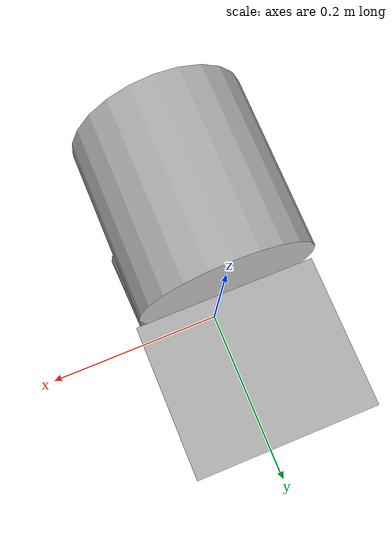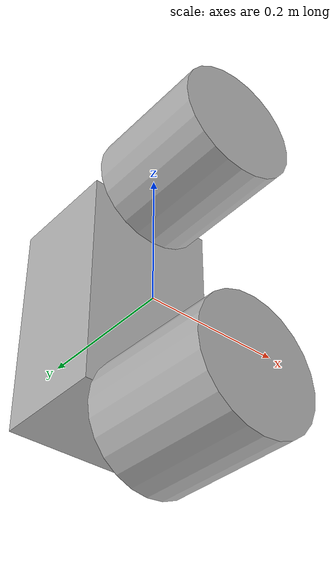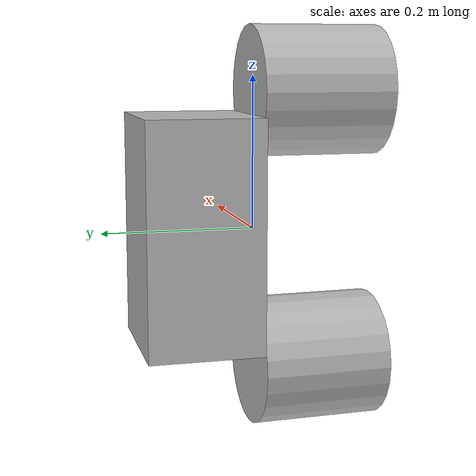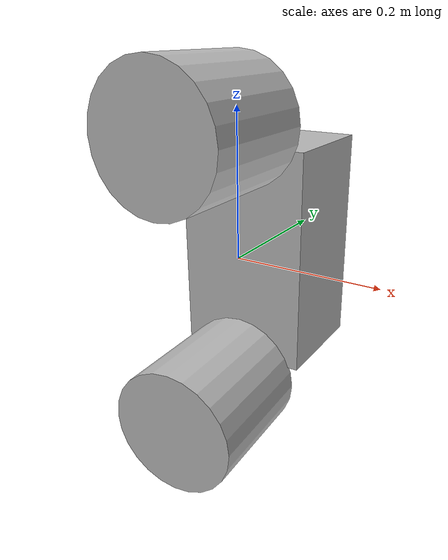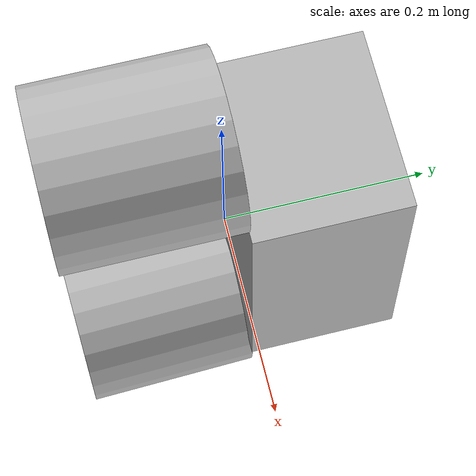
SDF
<sdf version="1.6">
<model name="GeneratedModel" canonical_link='base_link'>
  <link name="base_link">
    <pose>0 0.08 0 0 0 0</pose>
    <collision name='base_link collision'>
      <geometry>
        <box>
          <size>0.18 0.15 0.3</size>
        </box>
      </geometry>
    </collision>
    <visual name='base_link visual'>
      <geometry>
        <box>
          <size>0.18 0.15 0.3</size>
        </box>
      </geometry>
    </visual>
    <material>
      <script>
        <uri>file://media/materials/scripts/gazebo.material</uri>
        <name>Gazebo/Red</name>
      </script>
      <ambient>0 0.08437621153575764 0.913098651791473 1</ambient>
      <diffuse>0 0.08437621153575764 0.913098651791473 1</diffuse>
      <specular>0.1 0.1 0.1 1</specular>
      <emissive>0 0 0 1</emissive>
    </material>
    <inertial>
      <mass>2.5</mass>
      <inertia>
        <ixx>0.023437499999999997</ixx>
        <ixy>0</ixy>
        <ixz>0</ixz>
        <iyy>0.011437499999999998</iyy>
        <iyz>0</iyz>
        <izz>0.0255</izz>
      </inertia>
    </inertial>
  </link>
  <link name="left_wheel">
    <pose>0 -0.08 0.18 1.5707963267948963 0 0</pose>
    <collision name='left_wheel collision'>
      <geometry>
        <cylinder>
          <radius>0.08499999999999996</radius>
          <length>0.16999999999999993</length>
        </cylinder>
      </geometry>
    </collision>
    <visual name='left_wheel visual'>
      <geometry>
        <cylinder>
          <radius>0.08499999999999996</radius>
          <length>0.16999999999999993</length>
        </cylinder>
      </geometry>
    </visual>
    <material>
      <script>
        <uri>file://media/materials/scripts/gazebo.material</uri>
        <name>Gazebo/Red</name>
      </script>
      <ambient>0.514917665367466 0.2541520943200296 0.76052450467022 1</ambient>
      <diffuse>0.514917665367466 0.2541520943200296 0.76052450467022 1</diffuse>
      <specular>0.1 0.1 0.1 1</specular>
      <emissive>0 0 0 1</emissive>
    </material>
    <inertial>
      <mass>2</mass>
      <inertia>
        <ixx>0.019266666666666668</ixx>
        <ixy>0</ixy>
        <ixz>0</ixz>
        <iyy>0.028900000000000006</iyy>
        <iyz>0</iyz>
        <izz>0.019266666666666668</izz>
      </inertia>
    </inertial>
  </link>
  <joint name="base_link_to_left_wheel" type="continuous">
    <parent>base_link</parent>
    <child>left_wheel</child>
    <pose>0 -0.08 0.18 1.5707963267948963 0 0</pose>
  </joint>
  <link name="right_wheel">
    <pose>0 -0.08 -0.18 1.5707963267948966 0 0.030840783524403125</pose>
    <collision name='right_wheel collision'>
      <geometry>
        <cylinder>
          <radius>0.085</radius>
          <length>0.16999999999999998</length>
        </cylinder>
      </geometry>
    </collision>
    <visual name='right_wheel visual'>
      <geometry>
        <cylinder>
          <radius>0.085</radius>
          <length>0.16999999999999998</length>
        </cylinder>
      </geometry>
    </visual>
    <material>
      <script>
        <uri>file://media/materials/scripts/gazebo.material</uri>
        <name>Gazebo/Red</name>
      </script>
      <ambient>0.47353149613845735 0.1844749944900301 0.48514994004665124 1</ambient>
      <diffuse>0.47353149613845735 0.1844749944900301 0.48514994004665124 1</diffuse>
      <specular>0.1 0.1 0.1 1</specular>
      <emissive>0 0 0 1</emissive>
    </material>
    <inertial>
      <mass>1</mass>
      <inertia>
        <ixx>0</ixx>
        <ixy>0</ixy>
        <ixz>0</ixz>
        <iyy>0</iyy>
        <iyz>0</iyz>
        <izz>0</izz>
      </inertia>
    </inertial>
  </link>
  <joint name="base_link_to_right_wheel" type="continuous">
    <parent>base_link</parent>
    <child>right_wheel</child>
    <pose>0 -0.08 -0.18 1.5707963267948966 0 0.030840783524403125</pose>
  </joint>
  <link name="lidar">
    <pose>0.05 0.095 0 0 0 0</pose>
    <collision name='lidar collision'>
      <geometry>
        <cylinder>
          <radius>0.03000000000000003</radius>
          <length>0.06000000000000006</length>
        </cylinder>
      </geometry>
    </collision>
    <visual name='lidar visual'>
      <geometry>
        <cylinder>
          <radius>0.03000000000000003</radius>
          <length>0.06000000000000006</length>
        </cylinder>
      </geometry>
    </visual>
    <material>
      <script>
        <uri>file://media/materials/scripts/gazebo.material</uri>
        <name>Gazebo/Red</name>
      </script>
      <ambient>0.035601314869097636 0.6653872982754769 0.007499032040460618 1</ambient>
      <diffuse>0.035601314869097636 0.6653872982754769 0.007499032040460618 1</diffuse>
      <specular>0.1 0.1 0.1 1</specular>
      <emissive>0 0 0 1</emissive>
    </material>
    <inertial>
      <mass>0.11</mass>
      <inertia>
        <ixx>0.00013199999999999996</ixx>
        <ixy>0</ixy>
        <ixz>0</ixz>
        <iyy>0.00019799999999999996</iyy>
        <iyz>0</iyz>
        <izz>0.00013199999999999996</izz>
      </inertia>
    </inertial>

    <sensor name="lidar" type="ray">
        <always_on>true</always_on>
        <visualize>true</visualize>
        <pose>-0.064 0 0.121 0 0 0</pose>
        <update_rate></update_rate>
        <ray>
            <scan>
                <horizontal>
                    <samples>360</samples>
                    <resolution>1</resolution>
                    <min_angle></min_angle>
                    <max_angle>6.28</max_angle>
                </horizontal>
            </scan>
            <range>
                <min>0.12</min>
                <max>3</max>
                <resolution>0.015</resolution>
            </range>
            <noise>
                <type>gaussian</type>
                <mean>0</mean>
                <stddev>0.01</stddev>
            </noise>
        </ray>
        <plugin name="turtlebot3_laserscan" filename="libgazebo_ros_ray_sensor.so">
            <ros>
                <remapping>~/out:=scan</remapping>
            </ros>
            <output_type>sensor_msgs/LaserScan</output_type>
            <frame_name>base_scan</frame_name>
        </plugin>
    </sensor>
  </link>
  <joint name="base_link_to_lidar" type="fixed">
    <parent>base_link</parent>
    <child>lidar</child>
    <pose>0.05 0.095 0 0 0 0</pose>
  </joint>
  <link name="imu">
    <pose>0 0.08 0 0 0 0</pose>
    <collision name='imu collision'>
      <geometry>
        <box>
          <size>0.01 0.01 0.01</size>
        </box>
      </geometry>
    </collision>
    <visual name='imu visual'>
      <geometry>
        <box>
          <size>0.01 0.01 0.01</size>
        </box>
      </geometry>
    </visual>
    <material>
      <script>
        <uri>file://media/materials/scripts/gazebo.material</uri>
        <name>Gazebo/Red</name>
      </script>
      <ambient>0.48514994004665124 0.004776953478513362 0.6444796819634361 1</ambient>
      <diffuse>0.48514994004665124 0.004776953478513362 0.6444796819634361 1</diffuse>
      <specular>0.1 0.1 0.1 1</specular>
      <emissive>0 0 0 1</emissive>
    </material>
    <inertial>
      <mass>1</mass>
      <inertia>
        <ixx>0.000016666666666666667</ixx>
        <ixy>0</ixy>
        <ixz>0</ixz>
        <iyy>0.000016666666666666667</iyy>
        <iyz>0</iyz>
        <izz>0.000016666666666666667</izz>
      </inertia>
    </inertial>

    <sensor name="imu" type="imu">
        <always_on>true</always_on>
        <update_rate>100</update_rate>
        <imu>
            <angular_velocity>
                <x>
                    <noise type="gaussian">
                        <mean>0</mean>
                        <stddev>0</stddev>
                    </noise>
                </x>
                <y>
                    <noise type="gaussian">
                        <mean>0</mean>
                        <stddev>0</stddev>
                    </noise>
                </y>
                <z>
                    <noise type="gaussian">
                        <mean>0</mean>
                        <stddev>0</stddev>
                    </noise>
                </z>
            </angular_velocity>
            <linear_acceleration>
                <x>
                    <noise type="gaussian">
                        <mean>0</mean>
                        <stddev>0</stddev>
                    </noise>
                </x>
                <y>
                    <noise type="gaussian">
                        <mean>0</mean>
                        <stddev>0</stddev>
                    </noise>
                </y>
                <z>
                    <noise type="gaussian">
                        <mean>0</mean>
                        <stddev>0</stddev>
                    </noise>
                </z>
            </linear_acceleration>
        </imu>
        <plugin name="turtlebot3_imu" filename="libgazebo_ros_imu_sensor.so">
            <ros>
                <remapping>~/out:=imu</remapping>
            </ros>
        </plugin>
    </sensor>
  </link>
  <joint name="base_link_to_imu" type="fixed">
    <parent>base_link</parent>
    <child>imu</child>
    <pose>0 0.08 0 0 0 0</pose>
  </joint>
</model>
</sdf>
